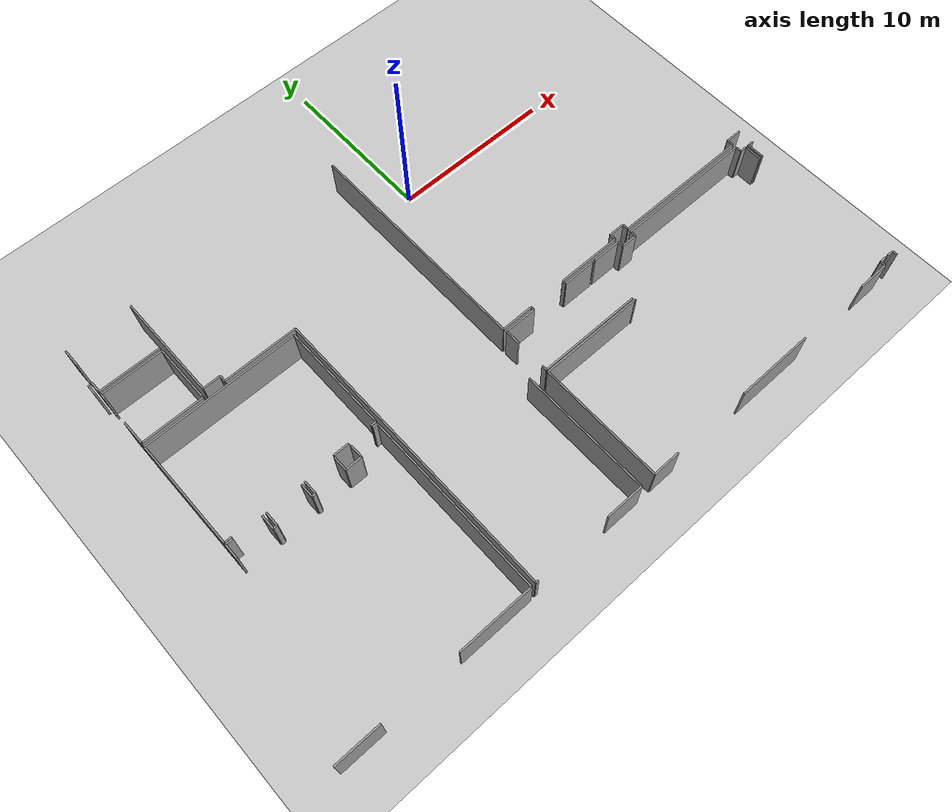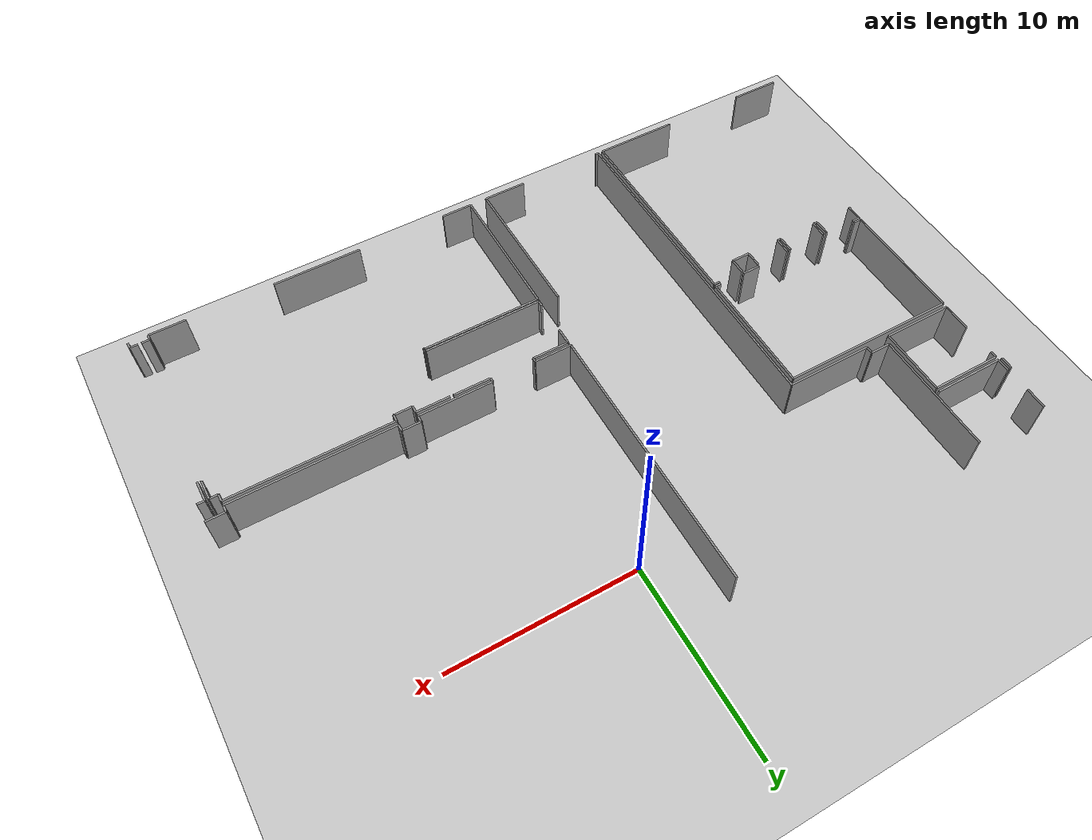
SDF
<sdf version="1.6">
 <world name="default">
  <model name="ground_plane">
   <static>1</static>
   <link name="link">
    <collision name="collision">
     <geometry><plane><normal>0 0 1</normal><size>100 100</size></plane></geometry>
     <surface><friction><ode><mu>100</mu><mu2>50</mu2></ode></friction></surface>
    </collision>
    <visual name="visual">
     <cast_shadows>0</cast_shadows>
     <geometry><plane><normal>0 0 1</normal><size>100 100</size></plane></geometry>
     <material>
      <script><uri>file://media/materials/scripts/gazebo.material</uri><name>Gazebo/Grey</name></script>
     </material>
    </visual>
   </link>
  </model>
  <model name="50010539">
   <static>1</static>
   <link name="Wall_164">
    <collision name="Wall_164_Collision">
     <geometry><box><size>4.55933538274 0.1 2.5</size></box></geometry>
     <pose>2.27966769137 0 1.25 0 0 0</pose>
    </collision>
    <visual name="Wall_164_Visual">
     <pose>2.27966769137 0 1.25 0 0 0</pose>
     <geometry><box><size>4.55933538274 0.1 2.5</size></box></geometry>
     <material>
      <script><uri>file://media/materials/scripts/gazebo.material</uri><name>Gazebo/Grey</name></script>
      <ambient>1 1 1 1</ambient>
     </material>
    </visual>
    <pose>51.639948172 -45.0811717182 0 0 0 3.14159265359</pose>
   </link>
   <link name="Wall_165">
    <collision name="Wall_165_Collision">
     <geometry><box><size>2.73074871065 0.1 2.5</size></box></geometry>
     <pose>1.36537435533 0 1.25 0 0 0</pose>
    </collision>
    <visual name="Wall_165_Visual">
     <pose>1.36537435533 0 1.25 0 0 0</pose>
     <geometry><box><size>2.73074871065 0.1 2.5</size></box></geometry>
     <material>
      <script><uri>file://media/materials/scripts/gazebo.material</uri><name>Gazebo/Grey</name></script>
      <ambient>1 1 1 1</ambient>
     </material>
    </visual>
    <pose>42.3958994944 -45.0811717182 0 0 0 3.14159265359</pose>
   </link>
   <link name="Wall_169">
    <collision name="Wall_169_Collision">
     <geometry><box><size>0.910164884022 0.1 2.5</size></box></geometry>
     <pose>0.455082442011 0 1.25 0 0 0</pose>
    </collision>
    <visual name="Wall_169_Visual">
     <pose>0.455082442011 0 1.25 0 0 0</pose>
     <geometry><box><size>0.910164884022 0.1 2.5</size></box></geometry>
     <material>
      <script><uri>file://media/materials/scripts/gazebo.material</uri><name>Gazebo/Grey</name></script>
      <ambient>1 1 1 1</ambient>
     </material>
    </visual>
    <pose>42.1605142146 -34.5696247555 0 0 0 1.57079632679</pose>
   </link>
   <link name="Wall_170">
    <collision name="Wall_170_Collision">
     <geometry><box><size>0.44104570514 0.1 2.5</size></box></geometry>
     <pose>0.22052285257 0 1.25 0 0 0</pose>
    </collision>
    <visual name="Wall_170_Visual">
     <pose>0.22052285257 0 1.25 0 0 0</pose>
     <geometry><box><size>0.44104570514 0.1 2.5</size></box></geometry>
     <material>
      <script><uri>file://media/materials/scripts/gazebo.material</uri><name>Gazebo/Grey</name></script>
      <ambient>1 1 1 1</ambient>
     </material>
    </visual>
    <pose>42.1605142146 -33.6594598714 0 0 0 0.0</pose>
   </link>
   <link name="Wall_171">
    <collision name="Wall_171_Collision">
     <geometry><box><size>0.895683544625 0.1 2.5</size></box></geometry>
     <pose>0.447841772313 0 1.25 0 0 0</pose>
    </collision>
    <visual name="Wall_171_Visual">
     <pose>0.447841772313 0 1.25 0 0 0</pose>
     <geometry><box><size>0.895683544625 0.1 2.5</size></box></geometry>
     <material>
      <script><uri>file://media/materials/scripts/gazebo.material</uri><name>Gazebo/Grey</name></script>
      <ambient>1 1 1 1</ambient>
     </material>
    </visual>
    <pose>44.3511343716 -33.6594598714 0 0 0 -1.57079632679</pose>
   </link>
   <link name="Wall_172">
    <collision name="Wall_172_Collision">
     <geometry><box><size>0.233479840451 0.1 2.5</size></box></geometry>
     <pose>0.116739920226 0 1.25 0 0 0</pose>
    </collision>
    <visual name="Wall_172_Visual">
     <pose>0.116739920226 0 1.25 0 0 0</pose>
     <geometry><box><size>0.233479840451 0.1 2.5</size></box></geometry>
     <material>
      <script><uri>file://media/materials/scripts/gazebo.material</uri><name>Gazebo/Grey</name></script>
      <ambient>1 1 1 1</ambient>
     </material>
    </visual>
    <pose>44.3511343716 -34.5551434161 0 0 0 0.0</pose>
   </link>
   <link name="Wall_173">
    <collision name="Wall_173_Collision">
     <geometry><box><size>0.882091410279 0.1 2.5</size></box></geometry>
     <pose>0.44104570514 0 1.25 0 0 0</pose>
    </collision>
    <visual name="Wall_173_Visual">
     <pose>0.44104570514 0 1.25 0 0 0</pose>
     <geometry><box><size>0.882091410279 0.1 2.5</size></box></geometry>
     <material>
      <script><uri>file://media/materials/scripts/gazebo.material</uri><name>Gazebo/Grey</name></script>
      <ambient>1 1 1 1</ambient>
     </material>
    </visual>
    <pose>44.584614212 -34.5551434161 0 0 0 1.57079632679</pose>
   </link>
   <link name="Wall_174">
    <collision name="Wall_174_Collision">
     <geometry><box><size>0.864307309266 0.1 2.5</size></box></geometry>
     <pose>0.432153654633 0 1.25 0 0 0</pose>
    </collision>
    <visual name="Wall_174_Visual">
     <pose>0.432153654633 0 1.25 0 0 0</pose>
     <geometry><box><size>0.864307309266 0.1 2.5</size></box></geometry>
     <material>
      <script><uri>file://media/materials/scripts/gazebo.material</uri><name>Gazebo/Grey</name></script>
      <ambient>1 1 1 1</ambient>
     </material>
    </visual>
    <pose>46.762658469 -33.6730520058 0 0 0 -1.57079632679</pose>
   </link>
   <link name="Wall_175">
    <collision name="Wall_175_Collision">
     <geometry><box><size>0.21493356368 0.1 2.5</size></box></geometry>
     <pose>0.10746678184 0 1.25 0 0 0</pose>
    </collision>
    <visual name="Wall_175_Visual">
     <pose>0.10746678184 0 1.25 0 0 0</pose>
     <geometry><box><size>0.21493356368 0.1 2.5</size></box></geometry>
     <material>
      <script><uri>file://media/materials/scripts/gazebo.material</uri><name>Gazebo/Grey</name></script>
      <ambient>1 1 1 1</ambient>
     </material>
    </visual>
    <pose>46.762658469 -34.5373593151 0 0 0 0.0</pose>
   </link>
   <link name="Wall_176">
    <collision name="Wall_176_Collision">
     <geometry><box><size>0.878661619369 0.1 2.5</size></box></geometry>
     <pose>0.439330809685 0 1.25 0 0 0</pose>
    </collision>
    <visual name="Wall_176_Visual">
     <pose>0.439330809685 0 1.25 0 0 0</pose>
     <geometry><box><size>0.878661619369 0.1 2.5</size></box></geometry>
     <material>
      <script><uri>file://media/materials/scripts/gazebo.material</uri><name>Gazebo/Grey</name></script>
      <ambient>1 1 1 1</ambient>
     </material>
    </visual>
    <pose>46.9775920327 -34.5373593151 0 0 0 1.57079632679</pose>
   </link>
   <link name="Wall_177">
    <collision name="Wall_177_Collision">
     <geometry><box><size>0.883488732502 0.1 2.5</size></box></geometry>
     <pose>0.441744366251 0 1.25 0 0 0</pose>
    </collision>
    <visual name="Wall_177_Visual">
     <pose>0.441744366251 0 1.25 0 0 0</pose>
     <geometry><box><size>0.883488732502 0.1 2.5</size></box></geometry>
     <material>
      <script><uri>file://media/materials/scripts/gazebo.material</uri><name>Gazebo/Grey</name></script>
      <ambient>1 1 1 1</ambient>
     </material>
    </visual>
    <pose>48.8638500038 -33.6586976957 0 0 0 -1.57079632679</pose>
   </link>
   <link name="Wall_178">
    <collision name="Wall_178_Collision">
     <geometry><box><size>1.01725057798 0.1 2.5</size></box></geometry>
     <pose>0.508625288992 0 1.25 0 0 0</pose>
    </collision>
    <visual name="Wall_178_Visual">
     <pose>0.508625288992 0 1.25 0 0 0</pose>
     <geometry><box><size>1.01725057798 0.1 2.5</size></box></geometry>
     <material>
      <script><uri>file://media/materials/scripts/gazebo.material</uri><name>Gazebo/Grey</name></script>
      <ambient>1 1 1 1</ambient>
     </material>
    </visual>
    <pose>48.8638500038 -34.5421864282 0 0 0 0.0</pose>
   </link>
   <link name="Wall_179">
    <collision name="Wall_179_Collision">
     <geometry><box><size>0.864307309266 0.1 2.5</size></box></geometry>
     <pose>0.432153654633 0 1.25 0 0 0</pose>
    </collision>
    <visual name="Wall_179_Visual">
     <pose>0.432153654633 0 1.25 0 0 0</pose>
     <geometry><box><size>0.864307309266 0.1 2.5</size></box></geometry>
     <material>
      <script><uri>file://media/materials/scripts/gazebo.material</uri><name>Gazebo/Grey</name></script>
      <ambient>1 1 1 1</ambient>
     </material>
    </visual>
    <pose>49.8811005818 -34.5421864282 0 0 0 1.57079632679</pose>
   </link>
   <link name="Wall_180">
    <collision name="Wall_180_Collision">
     <geometry><box><size>0.319986788954 0.1 2.5</size></box></geometry>
     <pose>0.159993394477 0 1.25 0 0 0</pose>
    </collision>
    <visual name="Wall_180_Visual">
     <pose>0.159993394477 0 1.25 0 0 0</pose>
     <geometry><box><size>0.319986788954 0.1 2.5</size></box></geometry>
     <material>
      <script><uri>file://media/materials/scripts/gazebo.material</uri><name>Gazebo/Grey</name></script>
      <ambient>1 1 1 1</ambient>
     </material>
    </visual>
    <pose>51.3137369477 -33.6778791189 0 0 0 0.0</pose>
   </link>
   <link name="Wall_181">
    <collision name="Wall_181_Collision">
     <geometry><box><size>11.4032942981 0.1 2.5</size></box></geometry>
     <pose>5.70164714903 0 1.25 0 0 0</pose>
    </collision>
    <visual name="Wall_181_Visual">
     <pose>5.70164714903 0 1.25 0 0 0</pose>
     <geometry><box><size>11.4032942981 0.1 2.5</size></box></geometry>
     <material>
      <script><uri>file://media/materials/scripts/gazebo.material</uri><name>Gazebo/Grey</name></script>
      <ambient>1 1 1 1</ambient>
     </material>
    </visual>
    <pose>51.6337237367 -33.6778791189 0 0 0 -1.5702504814</pose>
   </link>
   <link name="Wall_188">
    <collision name="Wall_188_Collision">
     <geometry><box><size>0.328624780874 0.1 2.5</size></box></geometry>
     <pose>0.164312390437 0 1.25 0 0 0</pose>
    </collision>
    <visual name="Wall_188_Visual">
     <pose>0.164312390437 0 1.25 0 0 0</pose>
     <geometry><box><size>0.328624780874 0.1 2.5</size></box></geometry>
     <material>
      <script><uri>file://media/materials/scripts/gazebo.material</uri><name>Gazebo/Grey</name></script>
      <ambient>1 1 1 1</ambient>
     </material>
    </visual>
    <pose>51.6511267498 -33.5432280684 0 0 0 3.14159265359</pose>
   </link>
   <link name="Wall_189">
    <collision name="Wall_189_Collision">
     <geometry><box><size>0.984985137573 0.1 2.5</size></box></geometry>
     <pose>0.492492568786 0 1.25 0 0 0</pose>
    </collision>
    <visual name="Wall_189_Visual">
     <pose>0.492492568786 0 1.25 0 0 0</pose>
     <geometry><box><size>0.984985137573 0.1 2.5</size></box></geometry>
     <material>
      <script><uri>file://media/materials/scripts/gazebo.material</uri><name>Gazebo/Grey</name></script>
      <ambient>1 1 1 1</ambient>
     </material>
    </visual>
    <pose>49.8727166485 -33.5432280684 0 0 0 3.14159265359</pose>
   </link>
   <link name="Wall_190">
    <collision name="Wall_190_Collision">
     <geometry><box><size>0.441807880897 0.1 2.5</size></box></geometry>
     <pose>0.220903940449 0 1.25 0 0 0</pose>
    </collision>
    <visual name="Wall_190_Visual">
     <pose>0.220903940449 0 1.25 0 0 0</pose>
     <geometry><box><size>0.441807880897 0.1 2.5</size></box></geometry>
     <material>
      <script><uri>file://media/materials/scripts/gazebo.material</uri><name>Gazebo/Grey</name></script>
      <ambient>1 1 1 1</ambient>
     </material>
    </visual>
    <pose>42.6042275349 -33.5432280684 0 0 0 3.14159265359</pose>
   </link>
   <link name="Wall_191">
    <collision name="Wall_191_Collision">
     <geometry><box><size>6.76545311349 0.1 2.5</size></box></geometry>
     <pose>3.38272655674 0 1.25 0 0 0</pose>
    </collision>
    <visual name="Wall_191_Visual">
     <pose>3.38272655674 0 1.25 0 0 0</pose>
     <geometry><box><size>6.76545311349 0.1 2.5</size></box></geometry>
     <material>
      <script><uri>file://media/materials/scripts/gazebo.material</uri><name>Gazebo/Grey</name></script>
      <ambient>1 1 1 1</ambient>
     </material>
    </visual>
    <pose>42.162419654 -33.5432280684 0 0 0 1.57079632679</pose>
   </link>
   <link name="Wall_192">
    <collision name="Wall_192_Collision">
     <geometry><box><size>9.48654759788 0.1 2.5</size></box></geometry>
     <pose>4.74327379894 0 1.25 0 0 0</pose>
    </collision>
    <visual name="Wall_192_Visual">
     <pose>4.74327379894 0 1.25 0 0 0</pose>
     <geometry><box><size>9.48654759788 0.1 2.5</size></box></geometry>
     <material>
      <script><uri>file://media/materials/scripts/gazebo.material</uri><name>Gazebo/Grey</name></script>
      <ambient>1 1 1 1</ambient>
     </material>
    </visual>
    <pose>42.162419654 -26.7777749549 0 0 0 0.0</pose>
   </link>
   <link name="Wall_193">
    <collision name="Wall_193_Collision">
     <geometry><box><size>6.76545345814 0.1 2.5</size></box></geometry>
     <pose>3.38272672907 0 1.25 0 0 0</pose>
    </collision>
    <visual name="Wall_193_Visual">
     <pose>3.38272672907 0 1.25 0 0 0</pose>
     <geometry><box><size>6.76545345814 0.1 2.5</size></box></geometry>
     <material>
      <script><uri>file://media/materials/scripts/gazebo.material</uri><name>Gazebo/Grey</name></script>
      <ambient>1 1 1 1</ambient>
     </material>
    </visual>
    <pose>51.6489672518 -26.7777749549 0 0 0 -1.57047713193</pose>
   </link>
   <link name="Wall_199">
    <collision name="Wall_199_Collision">
     <geometry><box><size>0.690037583027 0.1 2.5</size></box></geometry>
     <pose>0.345018791513 0 1.25 0 0 0</pose>
    </collision>
    <visual name="Wall_199_Visual">
     <pose>0.345018791513 0 1.25 0 0 0</pose>
     <geometry><box><size>0.690037583027 0.1 2.5</size></box></geometry>
     <material>
      <script><uri>file://media/materials/scripts/gazebo.material</uri><name>Gazebo/Grey</name></script>
      <ambient>1 1 1 1</ambient>
     </material>
    </visual>
    <pose>41.9674296893 -21.9584106095 0 0 0 -1.59104765473</pose>
   </link>
   <link name="Wall_200">
    <collision name="Wall_200_Collision">
     <geometry><box><size>3.77683493814 0.1 2.5</size></box></geometry>
     <pose>1.88841746907 0 1.25 0 0 0</pose>
    </collision>
    <visual name="Wall_200_Visual">
     <pose>1.88841746907 0 1.25 0 0 0</pose>
     <geometry><box><size>3.77683493814 0.1 2.5</size></box></geometry>
     <material>
      <script><uri>file://media/materials/scripts/gazebo.material</uri><name>Gazebo/Grey</name></script>
      <ambient>1 1 1 1</ambient>
     </material>
    </visual>
    <pose>45.9614847184 -22.6439877036 0 0 0 3.14159265359</pose>
   </link>
   <link name="Wall_201">
    <collision name="Wall_201_Collision">
     <geometry><box><size>0.701074667818 0.1 2.5</size></box></geometry>
     <pose>0.350537333909 0 1.25 0 0 0</pose>
    </collision>
    <visual name="Wall_201_Visual">
     <pose>0.350537333909 0 1.25 0 0 0</pose>
     <geometry><box><size>0.701074667818 0.1 2.5</size></box></geometry>
     <material>
      <script><uri>file://media/materials/scripts/gazebo.material</uri><name>Gazebo/Grey</name></script>
      <ambient>1 1 1 1</ambient>
     </material>
    </visual>
    <pose>42.1846497802 -22.6439877036 0 0 0 1.57079632679</pose>
   </link>
   <link name="Wall_202">
    <collision name="Wall_202_Collision">
     <geometry><box><size>1.13297426387 0.1 2.5</size></box></geometry>
     <pose>0.566487131933 0 1.25 0 0 0</pose>
    </collision>
    <visual name="Wall_202_Visual">
     <pose>0.566487131933 0 1.25 0 0 0</pose>
     <geometry><box><size>1.13297426387 0.1 2.5</size></box></geometry>
     <material>
      <script><uri>file://media/materials/scripts/gazebo.material</uri><name>Gazebo/Grey</name></script>
      <ambient>1 1 1 1</ambient>
     </material>
    </visual>
    <pose>42.1846497802 -20.5900510658 0 0 0 1.57079632679</pose>
   </link>
   <link name="Wall_205">
    <collision name="Wall_205_Collision">
     <geometry><box><size>3.77772414319 0.1 2.5</size></box></geometry>
     <pose>1.88886207159 0 1.25 0 0 0</pose>
    </collision>
    <visual name="Wall_205_Visual">
     <pose>1.88886207159 0 1.25 0 0 0</pose>
     <geometry><box><size>3.77772414319 0.1 2.5</size></box></geometry>
     <material>
      <script><uri>file://media/materials/scripts/gazebo.material</uri><name>Gazebo/Grey</name></script>
      <ambient>1 1 1 1</ambient>
     </material>
    </visual>
    <pose>45.9492899063 -26.5171108458 0 0 0 3.14159265359</pose>
   </link>
   <link name="Wall_206">
    <collision name="Wall_206_Collision">
     <geometry><box><size>1.53540306395 0.1 2.5</size></box></geometry>
     <pose>0.767701531973 0 1.25 0 0 0</pose>
    </collision>
    <visual name="Wall_206_Visual">
     <pose>0.767701531973 0 1.25 0 0 0</pose>
     <geometry><box><size>1.53540306395 0.1 2.5</size></box></geometry>
     <material>
      <script><uri>file://media/materials/scripts/gazebo.material</uri><name>Gazebo/Grey</name></script>
      <ambient>1 1 1 1</ambient>
     </material>
    </visual>
    <pose>42.1715657631 -26.5171108458 0 0 0 1.57079632679</pose>
   </link>
   <link name="Wall_207">
    <collision name="Wall_207_Collision">
     <geometry><box><size>0.345900764716 0.1 2.5</size></box></geometry>
     <pose>0.172950382358 0 1.25 0 0 0</pose>
    </collision>
    <visual name="Wall_207_Visual">
     <pose>0.172950382358 0 1.25 0 0 0</pose>
     <geometry><box><size>0.345900764716 0.1 2.5</size></box></geometry>
     <material>
      <script><uri>file://media/materials/scripts/gazebo.material</uri><name>Gazebo/Grey</name></script>
      <ambient>1 1 1 1</ambient>
     </material>
    </visual>
    <pose>42.1715657631 -23.1946596885 0 0 0 1.57079632679</pose>
   </link>
   <link name="Wall_208">
    <collision name="Wall_208_Collision">
     <geometry><box><size>3.77531058662 0.1 2.5</size></box></geometry>
     <pose>1.88765529331 0 1.25 0 0 0</pose>
    </collision>
    <visual name="Wall_208_Visual">
     <pose>1.88765529331 0 1.25 0 0 0</pose>
     <geometry><box><size>3.77531058662 0.1 2.5</size></box></geometry>
     <material>
      <script><uri>file://media/materials/scripts/gazebo.material</uri><name>Gazebo/Grey</name></script>
      <ambient>1 1 1 1</ambient>
     </material>
    </visual>
    <pose>42.1715657631 -22.8487589238 0 0 0 0.0</pose>
   </link>
   <link name="Wall_209">
    <collision name="Wall_209_Collision">
     <geometry><box><size>3.66835271594 0.1 2.5</size></box></geometry>
     <pose>1.83417635797 0 1.25 0 0 0</pose>
    </collision>
    <visual name="Wall_209_Visual">
     <pose>1.83417635797 0 1.25 0 0 0</pose>
     <geometry><box><size>3.66835271594 0.1 2.5</size></box></geometry>
     <material>
      <script><uri>file://media/materials/scripts/gazebo.material</uri><name>Gazebo/Grey</name></script>
      <ambient>1 1 1 1</ambient>
     </material>
    </visual>
    <pose>45.9468763497 -22.8487589238 0 0 0 -1.57013838659</pose>
   </link>
   <link name="Wall_270">
    <collision name="Wall_270_Collision">
     <geometry><box><size>2.33949848835 0.1 2.5</size></box></geometry>
     <pose>1.16974924418 0 1.25 0 0 0</pose>
    </collision>
    <visual name="Wall_270_Visual">
     <pose>1.16974924418 0 1.25 0 0 0</pose>
     <geometry><box><size>2.33949848835 0.1 2.5</size></box></geometry>
     <material>
      <script><uri>file://media/materials/scripts/gazebo.material</uri><name>Gazebo/Grey</name></script>
      <ambient>1 1 1 1</ambient>
     </material>
    </visual>
    <pose>59.1161301796 -45.0633876172 0 0 0 3.14159265359</pose>
   </link>
   <link name="Wall_271">
    <collision name="Wall_271_Collision">
     <geometry><box><size>0.167043520236 0.1 2.5</size></box></geometry>
     <pose>0.0835217601179 0 1.25 0 0 0</pose>
    </collision>
    <visual name="Wall_271_Visual">
     <pose>0.0835217601179 0 1.25 0 0 0</pose>
     <geometry><box><size>0.167043520236 0.1 2.5</size></box></geometry>
     <material>
      <script><uri>file://media/materials/scripts/gazebo.material</uri><name>Gazebo/Grey</name></script>
      <ambient>1 1 1 1</ambient>
     </material>
    </visual>
    <pose>52.0919183964 -45.0633876172 0 0 0 3.14159265359</pose>
   </link>
   <link name="Wall_272">
    <collision name="Wall_272_Collision">
     <geometry><box><size>18.5573283199 0.1 2.5</size></box></geometry>
     <pose>9.27866415996 0 1.25 0 0 0</pose>
    </collision>
    <visual name="Wall_272_Visual">
     <pose>9.27866415996 0 1.25 0 0 0</pose>
     <geometry><box><size>18.5573283199 0.1 2.5</size></box></geometry>
     <material>
      <script><uri>file://media/materials/scripts/gazebo.material</uri><name>Gazebo/Grey</name></script>
      <ambient>1 1 1 1</ambient>
     </material>
    </visual>
    <pose>51.9248748761 -45.0633876172 0 0 0 1.57079632679</pose>
   </link>
   <link name="Wall_273">
    <collision name="Wall_273_Collision">
     <geometry><box><size>4.59744417063 0.1 2.5</size></box></geometry>
     <pose>2.29872208531 0 1.25 0 0 0</pose>
    </collision>
    <visual name="Wall_273_Visual">
     <pose>2.29872208531 0 1.25 0 0 0</pose>
     <geometry><box><size>4.59744417063 0.1 2.5</size></box></geometry>
     <material>
      <script><uri>file://media/materials/scripts/gazebo.material</uri><name>Gazebo/Grey</name></script>
      <ambient>1 1 1 1</ambient>
     </material>
    </visual>
    <pose>51.9248748761 -26.5060592973 0 0 0 3.14159265359</pose>
   </link>
   <link name="Wall_274">
    <collision name="Wall_274_Collision">
     <geometry><box><size>0.403318005132 0.1 2.5</size></box></geometry>
     <pose>0.201659002566 0 1.25 0 0 0</pose>
    </collision>
    <visual name="Wall_274_Visual">
     <pose>0.201659002566 0 1.25 0 0 0</pose>
     <geometry><box><size>0.403318005132 0.1 2.5</size></box></geometry>
     <material>
      <script><uri>file://media/materials/scripts/gazebo.material</uri><name>Gazebo/Grey</name></script>
      <ambient>1 1 1 1</ambient>
     </material>
    </visual>
    <pose>47.3274307055 -26.5060592973 0 0 0 1.57079632679</pose>
   </link>
   <link name="Wall_275">
    <collision name="Wall_275_Collision">
     <geometry><box><size>1.08216254668 0.1 2.5</size></box></geometry>
     <pose>0.541081273342 0 1.25 0 0 0</pose>
    </collision>
    <visual name="Wall_275_Visual">
     <pose>0.541081273342 0 1.25 0 0 0</pose>
     <geometry><box><size>1.08216254668 0.1 2.5</size></box></geometry>
     <material>
      <script><uri>file://media/materials/scripts/gazebo.material</uri><name>Gazebo/Grey</name></script>
      <ambient>1 1 1 1</ambient>
     </material>
    </visual>
    <pose>47.3274307055 -26.1027412921 0 0 0 3.14159265359</pose>
   </link>
   <link name="Wall_276">
    <collision name="Wall_276_Collision">
     <geometry><box><size>6.64414013872 0.1 2.5</size></box></geometry>
     <pose>3.32207006936 0 1.25 0 0 0</pose>
    </collision>
    <visual name="Wall_276_Visual">
     <pose>3.32207006936 0 1.25 0 0 0</pose>
     <geometry><box><size>6.64414013872 0.1 2.5</size></box></geometry>
     <material>
      <script><uri>file://media/materials/scripts/gazebo.material</uri><name>Gazebo/Grey</name></script>
      <ambient>1 1 1 1</ambient>
     </material>
    </visual>
    <pose>46.2452681588 -26.1027412921 0 0 0 1.57079632679</pose>
   </link>
   <link name="Wall_280">
    <collision name="Wall_280_Collision">
     <geometry><box><size>8.07481210165 0.1 2.5</size></box></geometry>
     <pose>4.03740605083 0 1.25 0 0 0</pose>
    </collision>
    <visual name="Wall_280_Visual">
     <pose>4.03740605083 0 1.25 0 0 0</pose>
     <geometry><box><size>8.07481210165 0.1 2.5</size></box></geometry>
     <material>
      <script><uri>file://media/materials/scripts/gazebo.material</uri><name>Gazebo/Grey</name></script>
      <ambient>1 1 1 1</ambient>
     </material>
    </visual>
    <pose>59.0829755342 -36.9886435812 0 0 0 -1.56669038127</pose>
   </link>
   <link name="Wall_284">
    <collision name="Wall_284_Collision">
     <geometry><box><size>1.01623434364 0.1 2.5</size></box></geometry>
     <pose>0.50811717182 0 1.25 0 0 0</pose>
    </collision>
    <visual name="Wall_284_Visual">
     <pose>0.50811717182 0 1.25 0 0 0</pose>
     <geometry><box><size>1.01623434364 0.1 2.5</size></box></geometry>
     <material>
      <script><uri>file://media/materials/scripts/gazebo.material</uri><name>Gazebo/Grey</name></script>
      <ambient>1 1 1 1</ambient>
     </material>
    </visual>
    <pose>79.1646553695 -33.5312873149 0 0 0 3.14159265359</pose>
   </link>
   <link name="Wall_285">
    <collision name="Wall_285_Collision">
     <geometry><box><size>0.397601686949 0.1 2.5</size></box></geometry>
     <pose>0.198800843475 0 1.25 0 0 0</pose>
    </collision>
    <visual name="Wall_285_Visual">
     <pose>0.198800843475 0 1.25 0 0 0</pose>
     <geometry><box><size>0.397601686949 0.1 2.5</size></box></geometry>
     <material>
      <script><uri>file://media/materials/scripts/gazebo.material</uri><name>Gazebo/Grey</name></script>
      <ambient>1 1 1 1</ambient>
     </material>
    </visual>
    <pose>78.1484210259 -33.5312873149 0 0 0 -1.57079632679</pose>
   </link>
   <link name="Wall_286">
    <collision name="Wall_286_Collision">
     <geometry><box><size>8.66492213104 0.1 2.5</size></box></geometry>
     <pose>4.33246106552 0 1.25 0 0 0</pose>
    </collision>
    <visual name="Wall_286_Visual">
     <pose>4.33246106552 0 1.25 0 0 0</pose>
     <geometry><box><size>8.66492213104 0.1 2.5</size></box></geometry>
     <material>
      <script><uri>file://media/materials/scripts/gazebo.material</uri><name>Gazebo/Grey</name></script>
      <ambient>1 1 1 1</ambient>
     </material>
    </visual>
    <pose>78.1484210259 -33.9288890018 0 0 0 3.14159265359</pose>
   </link>
   <link name="Wall_287">
    <collision name="Wall_287_Collision">
     <geometry><box><size>0.377277000076 0.1 2.5</size></box></geometry>
     <pose>0.188638500038 0 1.25 0 0 0</pose>
    </collision>
    <visual name="Wall_287_Visual">
     <pose>0.188638500038 0 1.25 0 0 0</pose>
     <geometry><box><size>0.377277000076 0.1 2.5</size></box></geometry>
     <material>
      <script><uri>file://media/materials/scripts/gazebo.material</uri><name>Gazebo/Grey</name></script>
      <ambient>1 1 1 1</ambient>
     </material>
    </visual>
    <pose>69.4834988948 -33.9288890018 0 0 0 1.57079632679</pose>
   </link>
   <link name="Wall_288">
    <collision name="Wall_288_Collision">
     <geometry><box><size>1.01064505475 0.1 2.5</size></box></geometry>
     <pose>0.505322527375 0 1.25 0 0 0</pose>
    </collision>
    <visual name="Wall_288_Visual">
     <pose>0.505322527375 0 1.25 0 0 0</pose>
     <geometry><box><size>1.01064505475 0.1 2.5</size></box></geometry>
     <material>
      <script><uri>file://media/materials/scripts/gazebo.material</uri><name>Gazebo/Grey</name></script>
      <ambient>1 1 1 1</ambient>
     </material>
    </visual>
    <pose>69.4834988948 -33.5516120017 0 0 0 3.14159265359</pose>
   </link>
   <link name="Wall_289">
    <collision name="Wall_289_Collision">
     <geometry><box><size>0.375752648561 0.1 2.5</size></box></geometry>
     <pose>0.18787632428 0 1.25 0 0 0</pose>
    </collision>
    <visual name="Wall_289_Visual">
     <pose>0.18787632428 0 1.25 0 0 0</pose>
     <geometry><box><size>0.375752648561 0.1 2.5</size></box></geometry>
     <material>
      <script><uri>file://media/materials/scripts/gazebo.material</uri><name>Gazebo/Grey</name></script>
      <ambient>1 1 1 1</ambient>
     </material>
    </visual>
    <pose>68.4728538401 -33.5516120017 0 0 0 -1.57079632679</pose>
   </link>
   <link name="Wall_290">
    <collision name="Wall_290_Collision">
     <geometry><box><size>4.00917151495 0.1 2.5</size></box></geometry>
     <pose>2.00458575748 0 1.25 0 0 0</pose>
    </collision>
    <visual name="Wall_290_Visual">
     <pose>2.00458575748 0 1.25 0 0 0</pose>
     <geometry><box><size>4.00917151495 0.1 2.5</size></box></geometry>
     <material>
      <script><uri>file://media/materials/scripts/gazebo.material</uri><name>Gazebo/Grey</name></script>
      <ambient>1 1 1 1</ambient>
     </material>
    </visual>
    <pose>68.4728538401 -33.9273646503 0 0 0 3.14159265359</pose>
   </link>
   <link name="Wall_291">
    <collision name="Wall_291_Collision">
     <geometry><box><size>0.225604024288 0.1 2.5</size></box></geometry>
     <pose>0.112802012144 0 1.25 0 0 0</pose>
    </collision>
    <visual name="Wall_291_Visual">
     <pose>0.112802012144 0 1.25 0 0 0</pose>
     <geometry><box><size>0.225604024288 0.1 2.5</size></box></geometry>
     <material>
      <script><uri>file://media/materials/scripts/gazebo.material</uri><name>Gazebo/Grey</name></script>
      <ambient>1 1 1 1</ambient>
     </material>
    </visual>
    <pose>64.4636823251 -33.9273646503 0 0 0 -1.57079632679</pose>
   </link>
   <link name="Wall_292">
    <collision name="Wall_292_Collision">
     <geometry><box><size>2.00452224283 0.1 2.5</size></box></geometry>
     <pose>1.00226112141 0 1.25 0 0 0</pose>
    </collision>
    <visual name="Wall_292_Visual">
     <pose>1.00226112141 0 1.25 0 0 0</pose>
     <geometry><box><size>2.00452224283 0.1 2.5</size></box></geometry>
     <material>
      <script><uri>file://media/materials/scripts/gazebo.material</uri><name>Gazebo/Grey</name></script>
      <ambient>1 1 1 1</ambient>
     </material>
    </visual>
    <pose>64.4636823251 -34.1529686746 0 0 0 0.0</pose>
   </link>
   <link name="Wall_293">
    <collision name="Wall_293_Collision">
     <geometry><box><size>6.3811895023 0.1 2.5</size></box></geometry>
     <pose>3.19059475115 0 1.25 0 0 0</pose>
    </collision>
    <visual name="Wall_293_Visual">
     <pose>3.19059475115 0 1.25 0 0 0</pose>
     <geometry><box><size>6.3811895023 0.1 2.5</size></box></geometry>
     <material>
      <script><uri>file://media/materials/scripts/gazebo.material</uri><name>Gazebo/Grey</name></script>
      <ambient>1 1 1 1</ambient>
     </material>
    </visual>
    <pose>66.468204568 -37.2349533802 0 0 0 3.14159265359</pose>
   </link>
   <link name="Wall_294">
    <collision name="Wall_294_Collision">
     <geometry><box><size>0.317446203094 0.1 2.5</size></box></geometry>
     <pose>0.158723101547 0 1.25 0 0 0</pose>
    </collision>
    <visual name="Wall_294_Visual">
     <pose>0.158723101547 0 1.25 0 0 0</pose>
     <geometry><box><size>0.317446203094 0.1 2.5</size></box></geometry>
     <material>
      <script><uri>file://media/materials/scripts/gazebo.material</uri><name>Gazebo/Grey</name></script>
      <ambient>1 1 1 1</ambient>
     </material>
    </visual>
    <pose>60.0870150657 -37.2349533802 0 0 0 1.57079632679</pose>
   </link>
   <link name="Wall_295">
    <collision name="Wall_295_Collision">
     <geometry><box><size>0.916897436549 0.1 2.5</size></box></geometry>
     <pose>0.458448718274 0 1.25 0 0 0</pose>
    </collision>
    <visual name="Wall_295_Visual">
     <pose>0.458448718274 0 1.25 0 0 0</pose>
     <geometry><box><size>0.916897436549 0.1 2.5</size></box></geometry>
     <material>
      <script><uri>file://media/materials/scripts/gazebo.material</uri><name>Gazebo/Grey</name></script>
      <ambient>1 1 1 1</ambient>
     </material>
    </visual>
    <pose>60.0870150657 -35.0887934758 0 0 0 1.57079632679</pose>
   </link>
   <link name="Wall_296">
    <collision name="Wall_296_Collision">
     <geometry><box><size>1.98940575697 0.1 2.5</size></box></geometry>
     <pose>0.994702878484 0 1.25 0 0 0</pose>
    </collision>
    <visual name="Wall_296_Visual">
     <pose>0.994702878484 0 1.25 0 0 0</pose>
     <geometry><box><size>1.98940575697 0.1 2.5</size></box></geometry>
     <material>
      <script><uri>file://media/materials/scripts/gazebo.material</uri><name>Gazebo/Grey</name></script>
      <ambient>1 1 1 1</ambient>
     </material>
    </visual>
    <pose>60.0870150657 -34.1718960392 0 0 0 0.0</pose>
   </link>
   <link name="Wall_297">
    <collision name="Wall_297_Collision">
     <geometry><box><size>0.209852391962 0.1 2.5</size></box></geometry>
     <pose>0.104926195981 0 1.25 0 0 0</pose>
    </collision>
    <visual name="Wall_297_Visual">
     <pose>0.104926195981 0 1.25 0 0 0</pose>
     <geometry><box><size>0.209852391962 0.1 2.5</size></box></geometry>
     <material>
      <script><uri>file://media/materials/scripts/gazebo.material</uri><name>Gazebo/Grey</name></script>
      <ambient>1 1 1 1</ambient>
     </material>
    </visual>
    <pose>62.0764208226 -34.1718960392 0 0 0 1.57079632679</pose>
   </link>
   <link name="Wall_298">
    <collision name="Wall_298_Collision">
     <geometry><box><size>2.02141713879 0.1 2.5</size></box></geometry>
     <pose>1.0107085694 0 1.25 0 0 0</pose>
    </collision>
    <visual name="Wall_298_Visual">
     <pose>1.0107085694 0 1.25 0 0 0</pose>
     <geometry><box><size>2.02141713879 0.1 2.5</size></box></geometry>
     <material>
      <script><uri>file://media/materials/scripts/gazebo.material</uri><name>Gazebo/Grey</name></script>
      <ambient>1 1 1 1</ambient>
     </material>
    </visual>
    <pose>62.0764208226 -33.9620436473 0 0 0 3.14159265359</pose>
   </link>
   <link name="Wall_299">
    <collision name="Wall_299_Collision">
     <geometry><box><size>14.5144940423 0.1 2.5</size></box></geometry>
     <pose>7.25724702116 0 1.25 0 0 0</pose>
    </collision>
    <visual name="Wall_299_Visual">
     <pose>7.25724702116 0 1.25 0 0 0</pose>
     <geometry><box><size>14.5144940423 0.1 2.5</size></box></geometry>
     <material>
      <script><uri>file://media/materials/scripts/gazebo.material</uri><name>Gazebo/Grey</name></script>
      <ambient>1 1 1 1</ambient>
     </material>
    </visual>
    <pose>60.0550036838 -33.9620436473 0 0 0 1.57079632679</pose>
   </link>
   <link name="Wall_329">
    <collision name="Wall_329_Collision">
     <geometry><box><size>0.308427123295 0.1 2.5</size></box></geometry>
     <pose>0.154213561647 0 1.25 0 0 0</pose>
    </collision>
    <visual name="Wall_329_Visual">
     <pose>0.154213561647 0 1.25 0 0 0</pose>
     <geometry><box><size>0.308427123295 0.1 2.5</size></box></geometry>
     <material>
      <script><uri>file://media/materials/scripts/gazebo.material</uri><name>Gazebo/Grey</name></script>
      <ambient>1 1 1 1</ambient>
     </material>
    </visual>
    <pose>79.1973018978 -45.0688498768 0 0 0 1.57079632679</pose>
   </link>
   <link name="Wall_330">
    <collision name="Wall_330_Collision">
     <geometry><box><size>0.409288381901 0.1 2.5</size></box></geometry>
     <pose>0.20464419095 0 1.25 0 0 0</pose>
    </collision>
    <visual name="Wall_330_Visual">
     <pose>0.20464419095 0 1.25 0 0 0</pose>
     <geometry><box><size>0.409288381901 0.1 2.5</size></box></geometry>
     <material>
      <script><uri>file://media/materials/scripts/gazebo.material</uri><name>Gazebo/Grey</name></script>
      <ambient>1 1 1 1</ambient>
     </material>
    </visual>
    <pose>79.1973018978 -44.7604227535 0 0 0 3.14159265359</pose>
   </link>
   <link name="Wall_331">
    <collision name="Wall_331_Collision">
     <geometry><box><size>1.10464673154 0.1 2.5</size></box></geometry>
     <pose>0.552323365768 0 1.25 0 0 0</pose>
    </collision>
    <visual name="Wall_331_Visual">
     <pose>0.552323365768 0 1.25 0 0 0</pose>
     <geometry><box><size>1.10464673154 0.1 2.5</size></box></geometry>
     <material>
      <script><uri>file://media/materials/scripts/gazebo.material</uri><name>Gazebo/Grey</name></script>
      <ambient>1 1 1 1</ambient>
     </material>
    </visual>
    <pose>78.7880135159 -35.6622037042 0 0 0 1.57079632679</pose>
   </link>
   <link name="Wall_332">
    <collision name="Wall_332_Collision">
     <geometry><box><size>0.393028632403 0.1 2.5</size></box></geometry>
     <pose>0.196514316201 0 1.25 0 0 0</pose>
    </collision>
    <visual name="Wall_332_Visual">
     <pose>0.196514316201 0 1.25 0 0 0</pose>
     <geometry><box><size>0.393028632403 0.1 2.5</size></box></geometry>
     <material>
      <script><uri>file://media/materials/scripts/gazebo.material</uri><name>Gazebo/Grey</name></script>
      <ambient>1 1 1 1</ambient>
     </material>
    </visual>
    <pose>78.7880135159 -34.5575569726 0 0 0 0.0</pose>
   </link>
   <link name="Wall_337">
    <collision name="Wall_337_Collision">
     <geometry><box><size>1.9689540408 0.1 2.5</size></box></geometry>
     <pose>0.984477020401 0 1.25 0 0 0</pose>
    </collision>
    <visual name="Wall_337_Visual">
     <pose>0.984477020401 0 1.25 0 0 0</pose>
     <geometry><box><size>1.9689540408 0.1 2.5</size></box></geometry>
     <material>
      <script><uri>file://media/materials/scripts/gazebo.material</uri><name>Gazebo/Grey</name></script>
      <ambient>1 1 1 1</ambient>
     </material>
    </visual>
    <pose>78.1594725744 -45.0688498768 0 0 0 3.14159265359</pose>
   </link>
   <link name="Wall_338">
    <collision name="Wall_338_Collision">
     <geometry><box><size>4.82762124946 0.1 2.5</size></box></geometry>
     <pose>2.41381062473 0 1.25 0 0 0</pose>
    </collision>
    <visual name="Wall_338_Visual">
     <pose>2.41381062473 0 1.25 0 0 0</pose>
     <geometry><box><size>4.82762124946 0.1 2.5</size></box></geometry>
     <material>
      <script><uri>file://media/materials/scripts/gazebo.material</uri><name>Gazebo/Grey</name></script>
      <ambient>1 1 1 1</ambient>
     </material>
    </visual>
    <pose>71.4880211377 -45.0688498768 0 0 0 3.14159265359</pose>
   </link>
   <link name="Wall_339">
    <collision name="Wall_339_Collision">
     <geometry><box><size>1.80114834481 0.1 2.5</size></box></geometry>
     <pose>0.900574172404 0 1.25 0 0 0</pose>
    </collision>
    <visual name="Wall_339_Visual">
     <pose>0.900574172404 0 1.25 0 0 0</pose>
     <geometry><box><size>1.80114834481 0.1 2.5</size></box></geometry>
     <material>
      <script><uri>file://media/materials/scripts/gazebo.material</uri><name>Gazebo/Grey</name></script>
      <ambient>1 1 1 1</ambient>
     </material>
    </visual>
    <pose>66.6603998882 -34.1637661645 0 0 0 0.0</pose>
   </link>
   <link name="Wall_340">
    <collision name="Wall_340_Collision">
     <geometry><box><size>0.374609384924 0.1 2.5</size></box></geometry>
     <pose>0.187304692462 0 1.25 0 0 0</pose>
    </collision>
    <visual name="Wall_340_Visual">
     <pose>0.187304692462 0 1.25 0 0 0</pose>
     <geometry><box><size>0.374609384924 0.1 2.5</size></box></geometry>
     <material>
      <script><uri>file://media/materials/scripts/gazebo.material</uri><name>Gazebo/Grey</name></script>
      <ambient>1 1 1 1</ambient>
     </material>
    </visual>
    <pose>68.461548233 -34.1637661645 0 0 0 -1.57079632679</pose>
   </link>
   <link name="Wall_341">
    <collision name="Wall_341_Collision">
     <geometry><box><size>0.998958359798 0.1 2.5</size></box></geometry>
     <pose>0.499479179899 0 1.25 0 0 0</pose>
    </collision>
    <visual name="Wall_341_Visual">
     <pose>0.499479179899 0 1.25 0 0 0</pose>
     <geometry><box><size>0.998958359798 0.1 2.5</size></box></geometry>
     <material>
      <script><uri>file://media/materials/scripts/gazebo.material</uri><name>Gazebo/Grey</name></script>
      <ambient>1 1 1 1</ambient>
     </material>
    </visual>
    <pose>68.461548233 -34.5383755494 0 0 0 0.0</pose>
   </link>
   <link name="Wall_342">
    <collision name="Wall_342_Collision">
     <geometry><box><size>0.36495515866 0.1 2.5</size></box></geometry>
     <pose>0.18247757933 0 1.25 0 0 0</pose>
    </collision>
    <visual name="Wall_342_Visual">
     <pose>0.18247757933 0 1.25 0 0 0</pose>
     <geometry><box><size>0.36495515866 0.1 2.5</size></box></geometry>
     <material>
      <script><uri>file://media/materials/scripts/gazebo.material</uri><name>Gazebo/Grey</name></script>
      <ambient>1 1 1 1</ambient>
     </material>
    </visual>
    <pose>69.4605065928 -34.5383755494 0 0 0 1.57079632679</pose>
   </link>
   <link name="Wall_343">
    <collision name="Wall_343_Collision">
     <geometry><box><size>8.6927415462 0.1 2.5</size></box></geometry>
     <pose>4.3463707731 0 1.25 0 0 0</pose>
    </collision>
    <visual name="Wall_343_Visual">
     <pose>4.3463707731 0 1.25 0 0 0</pose>
     <geometry><box><size>8.6927415462 0.1 2.5</size></box></geometry>
     <material>
      <script><uri>file://media/materials/scripts/gazebo.material</uri><name>Gazebo/Grey</name></script>
      <ambient>1 1 1 1</ambient>
     </material>
    </visual>
    <pose>69.4605065928 -34.1734203907 0 0 0 0.0</pose>
   </link>
   <link name="Wall_344">
    <collision name="Wall_344_Collision">
     <geometry><box><size>0.384136581896 0.1 2.5</size></box></geometry>
     <pose>0.192068290948 0 1.25 0 0 0</pose>
    </collision>
    <visual name="Wall_344_Visual">
     <pose>0.192068290948 0 1.25 0 0 0</pose>
     <geometry><box><size>0.384136581896 0.1 2.5</size></box></geometry>
     <material>
      <script><uri>file://media/materials/scripts/gazebo.material</uri><name>Gazebo/Grey</name></script>
      <ambient>1 1 1 1</ambient>
     </material>
    </visual>
    <pose>78.153248139 -34.1734203907 0 0 0 -1.57079632679</pose>
   </link>
   <link name="Wall_345">
    <collision name="Wall_345_Collision">
     <geometry><box><size>0.441807880897 0.1 2.5</size></box></geometry>
     <pose>0.220903940449 0 1.25 0 0 0</pose>
    </collision>
    <visual name="Wall_345_Visual">
     <pose>0.220903940449 0 1.25 0 0 0</pose>
     <geometry><box><size>0.441807880897 0.1 2.5</size></box></geometry>
     <material>
      <script><uri>file://media/materials/scripts/gazebo.material</uri><name>Gazebo/Grey</name></script>
      <ambient>1 1 1 1</ambient>
     </material>
    </visual>
    <pose>78.153248139 -34.5575569726 0 0 0 0.0</pose>
   </link>
   <link name="Wall_346">
    <collision name="Wall_346_Collision">
     <geometry><box><size>1.07415970123 0.1 2.5</size></box></geometry>
     <pose>0.537079850614 0 1.25 0 0 0</pose>
    </collision>
    <visual name="Wall_346_Visual">
     <pose>0.537079850614 0 1.25 0 0 0</pose>
     <geometry><box><size>1.07415970123 0.1 2.5</size></box></geometry>
     <material>
      <script><uri>file://media/materials/scripts/gazebo.material</uri><name>Gazebo/Grey</name></script>
      <ambient>1 1 1 1</ambient>
     </material>
    </visual>
    <pose>78.5950560199 -34.5575569726 0 0 0 -1.57079632679</pose>
   </link>
   <link name="Wall_347">
    <collision name="Wall_347_Collision">
     <geometry><box><size>0.413480348568 0.1 2.5</size></box></geometry>
     <pose>0.206740174284 0 1.25 0 0 0</pose>
    </collision>
    <visual name="Wall_347_Visual">
     <pose>0.206740174284 0 1.25 0 0 0</pose>
     <geometry><box><size>0.413480348568 0.1 2.5</size></box></geometry>
     <material>
      <script><uri>file://media/materials/scripts/gazebo.material</uri><name>Gazebo/Grey</name></script>
      <ambient>1 1 1 1</ambient>
     </material>
    </visual>
    <pose>78.5950560199 -44.7540712888 0 0 0 3.14159265359</pose>
   </link>
   <link name="Wall_348">
    <collision name="Wall_348_Collision">
     <geometry><box><size>0.315553650467 0.1 2.5</size></box></geometry>
     <pose>0.157776825233 0 1.25 0 0 0</pose>
    </collision>
    <visual name="Wall_348_Visual">
     <pose>0.157776825233 0 1.25 0 0 0</pose>
     <geometry><box><size>0.315553650467 0.1 2.5</size></box></geometry>
     <material>
      <script><uri>file://media/materials/scripts/gazebo.material</uri><name>Gazebo/Grey</name></script>
      <ambient>1 1 1 1</ambient>
     </material>
    </visual>
    <pose>78.1815756713 -44.7540712888 0 0 0 -1.64089918022</pose>
   </link>
   <link name="Wall_349">
    <collision name="Wall_349_Collision">
     <geometry><box><size>0.0834582454714 0.1 2.5</size></box></geometry>
     <pose>0.0417291227357 0 1.25 0 0 0</pose>
    </collision>
    <visual name="Wall_349_Visual">
     <pose>0.0417291227357 0 1.25 0 0 0</pose>
     <geometry><box><size>0.0834582454714 0.1 2.5</size></box></geometry>
     <material>
      <script><uri>file://media/materials/scripts/gazebo.material</uri><name>Gazebo/Grey</name></script>
      <ambient>1 1 1 1</ambient>
     </material>
    </visual>
    <pose>66.4981834811 -37.4604303752 0 0 0 1.57079632679</pose>
   </link>
   <link name="Wall_350">
    <collision name="Wall_350_Collision">
     <geometry><box><size>6.43619318615 0.1 2.5</size></box></geometry>
     <pose>3.21809659307 0 1.25 0 0 0</pose>
    </collision>
    <visual name="Wall_350_Visual">
     <pose>3.21809659307 0 1.25 0 0 0</pose>
     <geometry><box><size>6.43619318615 0.1 2.5</size></box></geometry>
     <material>
      <script><uri>file://media/materials/scripts/gazebo.material</uri><name>Gazebo/Grey</name></script>
      <ambient>1 1 1 1</ambient>
     </material>
    </visual>
    <pose>66.4981834811 -37.3769721298 0 0 0 3.14159265359</pose>
   </link>
   <link name="Wall_351">
    <collision name="Wall_351_Collision">
     <geometry><box><size>7.6758720561 0.1 2.5</size></box></geometry>
     <pose>3.83793602805 0 1.25 0 0 0</pose>
    </collision>
    <visual name="Wall_351_Visual">
     <pose>3.83793602805 0 1.25 0 0 0</pose>
     <geometry><box><size>7.6758720561 0.1 2.5</size></box></geometry>
     <material>
      <script><uri>file://media/materials/scripts/gazebo.material</uri><name>Gazebo/Grey</name></script>
      <ambient>1 1 1 1</ambient>
     </material>
    </visual>
    <pose>60.061990295 -37.3769721298 0 0 0 -1.57079632679</pose>
   </link>
   <link name="Wall_352">
    <collision name="Wall_352_Collision">
     <geometry><box><size>1.69698432459 0.1 2.5</size></box></geometry>
     <pose>0.848492162293 0 1.25 0 0 0</pose>
    </collision>
    <visual name="Wall_352_Visual">
     <pose>0.848492162293 0 1.25 0 0 0</pose>
     <geometry><box><size>1.69698432459 0.1 2.5</size></box></geometry>
     <material>
      <script><uri>file://media/materials/scripts/gazebo.material</uri><name>Gazebo/Grey</name></script>
      <ambient>1 1 1 1</ambient>
     </material>
    </visual>
    <pose>60.061990295 -45.0528441859 0 0 0 0.0</pose>
   </link>
   <pose>-62.8 22.8208416961 0 0 0 0</pose>
  </model>
 </world>
</sdf>
